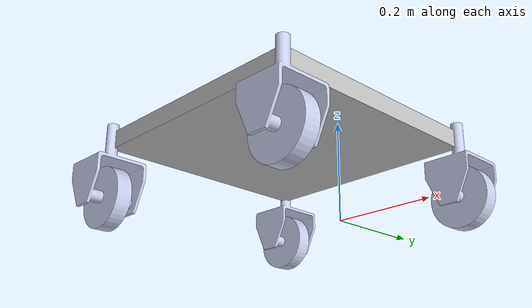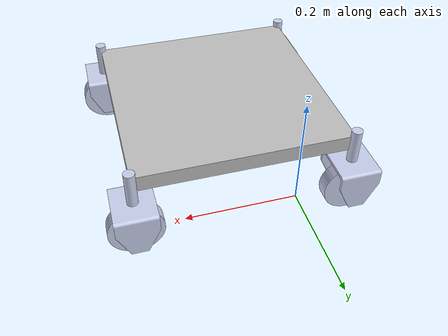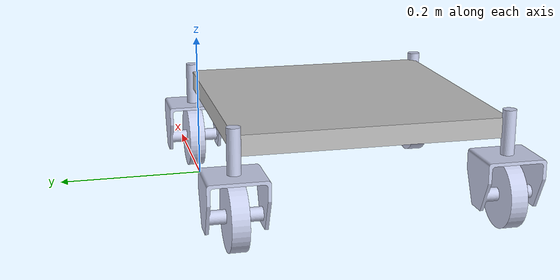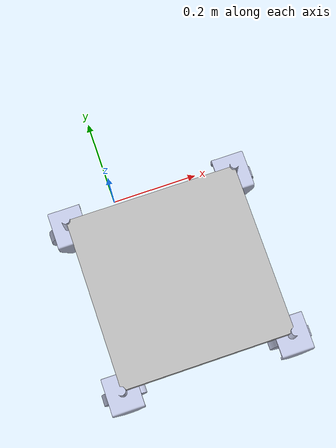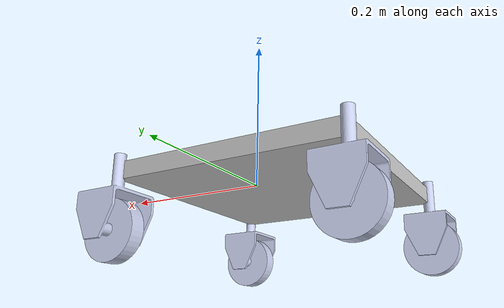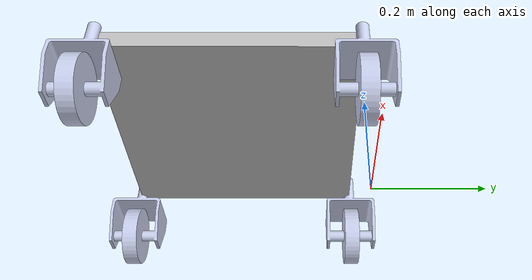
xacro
<?xml version="1.0" encoding="utf-8"?>
<robot
  xmlns:xacro="http://www.ros.org/wiki/xacro"
  name="test_rover_fourwheel_gazebo">

  <xacro:include filename="$(find test_rover_V1)/urdf/xacro_test.xacro" />

  <link    name="base_link"/>

  <link    name="base_footprint"/>

  <joint    name="base_joint"    type="fixed">
    <origin      xyz="-0.0825 0.23 0.01"      rpy="0 0 0" />
    <parent      link="base_link" />
    <child       link="chassis_link" />
   </joint>

  <joint    name="footprint_joint"    type="fixed">
    <origin      xyz="0.0 0.0 0.01"      rpy="0 0 3.14" />
    <child       link="base_link" />
    <parent      link="base_footprint" />
   </joint>

  <link
    name="chassis_link">
    <inertial>
      <origin
        xyz="0 0 0.052818"
        rpy="0 0 0" />
      <mass
        value="100.059" />
      <inertia
        ixx="3.0083721"
        ixy="1"
        ixz="1"
        iyy="3.010822"
        iyz="1"
        izz="5.018653" />
    </inertial>
    <visual>
      <origin
        xyz="0 0 0.052818"
        rpy="0 0 0" />
      <geometry>
       	<box size="0.4 0.4 0.03" />
      </geometry>
      <material
        name="">
        <color
          rgba="0.75294 0.75294 0.75294 1" />
      </material>
    </visual>
    <collision>
      <origin
        xyz="0 0 0"
        rpy="0 0 0" />
      <geometry>
        <mesh
          filename="package://swerve_steering_controller/test/meshes/wheel.STL" />
      </geometry>
    </collision>
  </link>

      <gazebo reference="chassis_link">
      <material>Gazebo/Grey</material>
    </gazebo>

 <xacro:swerve_steer prefix="1" origin_xyz="-0.2 -0.2 -0.087123" joint_origin_xyz="-0.2 -0.2 0.08" />
 <xacro:swerve_steer prefix="2" origin_xyz="-0.2 0.2 -0.087123" joint_origin_xyz="-0.2 0.2 0.08" />
 <xacro:swerve_steer prefix="3" origin_xyz="0.2 0.2 -0.087123" joint_origin_xyz="0.2 0.2 0.08" />
 <xacro:swerve_steer prefix="4" origin_xyz="0.2 -0.2 -0.087123" joint_origin_xyz="0.2 -0.2 0.08" />

 <!-- Gazebo plugin for ROS Control -->
   <gazebo>
    <plugin name="gazebo_ros_control" filename="libgazebo_ros_control.so">
      <robotNamespace>/</robotNamespace>
      <robotSimType>gazebo_ros_control/DefaultRobotHWSim</robotSimType>
          </plugin>
 	 </gazebo>

   <gazebo>
    <plugin name="ground_truth" filename="libgazebo_ros_p3d.so">
      <alwaysOn>true</alwaysOn>
      <updateRate>50.0</updateRate>
      <gaussianNoise>0.01</gaussianNoise>
      <bodyName>base_footprint</bodyName>
      <topicName>odomw</topicName>
    </plugin>
  </gazebo>

</robot>

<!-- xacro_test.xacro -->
<robot xmlns:xacro="http://www.ros.org/wiki/xacro"
name="test_rover_fourwheel_gazebo">

<xacro:macro name="swerve_steer" params="prefix origin_xyz joint_origin_xyz">
 <link
    name="steer_body_${prefix}">
    <inertial>
      <origin
      	xyz="${origin_xyz}"
        rpy="0 0 0" />
      <mass
        value="4.12388" />
      <inertia
        ixx="1.00025982"
        ixy="1.5851E-20"
        ixz="7.5308E-21"
        iyy="1.00018208"
        iyz="4.4695E-20"
        izz="1.00014529" />
    </inertial>
    <visual>
      <origin
        xyz="0 0 0"
        rpy="0 0 0" />
      <geometry>
        <mesh
          filename="package://test_rover_V1/meshes/steer_body_1.STL" />
      </geometry>
      <material
        name="">
        <color
          rgba="0.79216 0.81961 0.93333 1" />
      </material>
    </visual>
    <collision>
      <origin
        xyz="0 0 0"
        rpy="0 0 0" />
      <geometry>
        <mesh
          filename="package://test_rover_V1/meshes/steer_body_1.STL" />
      </geometry>
    </collision>
  </link>
  <joint
    name="steer_joint_${prefix}"
    type="continuous">
    <origin
      xyz="${joint_origin_xyz}"
      rpy="0 0 0" />
    <parent
      link="chassis_link" />
    <child
      link="steer_body_${prefix}" />
    <axis
      xyz="0 0 1" />
  </joint>
  <transmission name="steer_joint_${prefix}_transmission">
	  <type>transmission_interface/SimpleTransmission</type>
	  <actuator name="motor_${prefix}">
		  <mechanicalReduction>1</mechanicalReduction>
	  </actuator>
	  <joint name="steer_joint_${prefix}">
		  <hardwareInterface>hardware_interface/PositionJointInterface</hardwareInterface>
	  </joint>
</transmission>
  <link
    name="wheel_${prefix}">
    <inertial>
      <origin
        xyz="0 -6.9388E-18 0"
        rpy="0 0 0" />
      <mass
        value="0.19795" />
      <inertia
        ixx="0.00026531"
        ixy="-1.5846E-20"
        ixz="-2.0037E-20"
        iyy="0.0001433"
        iyz="1.3553E-20"
        izz="1.0001433" />
    </inertial>
    <visual>
      <origin
        xyz="0 0 0"
        rpy="0 0 0" />
      <geometry>
        <mesh
          filename="package://test_rover_V1/meshes/wheel_1.STL" />
      </geometry>
      <material
        name="">
        <color
          rgba="0.79216 0.81961 0.93333 1" />
      </material>
    </visual>
    <collision>
      <origin
        xyz="0 0 0"
        rpy="0 0 0" />
      <geometry>
        <mesh
          filename="package://test_rover_V1/meshes/wheel_1.STL" />
      </geometry>
    </collision>
  </link>
  <joint
    name="wheel_joint_${prefix}"
    type="continuous">
    <origin
      xyz="0 0 -0.127"
      rpy="1.6642 0 -1.5708" />
    <parent
      link="steer_body_${prefix}" />
    <child
      link="wheel_${prefix}" />
    <axis
      xyz="1 0 0" />
  </joint>

    <!-- This block connects the head_swivel joint to an actuator (motor), which informs both
  simulation and visualization of the robot -->
  <transmission name="wheel_joint_${prefix}">
    <type>transmission_interface/SimpleTransmission</type>
    <actuator name="wheel_motor_${prefix}">
      <mechanicalReduction>1</mechanicalReduction>
    </actuator>
    <joint name="wheel_joint_${prefix}">
      <hardwareInterface>hardware_interface/VelocityJointInterface</hardwareInterface>
    </joint>
  </transmission>

      <gazebo reference="wheel_${prefix}">
      <mu1 value="200.0"/>
      <mu2 value="100.0"/>
      <kp value="10000000.0" />
      <kd value="1.0" />
      <material>Gazebo/Grey</material>
    </gazebo>

</xacro:macro>
</robot>
